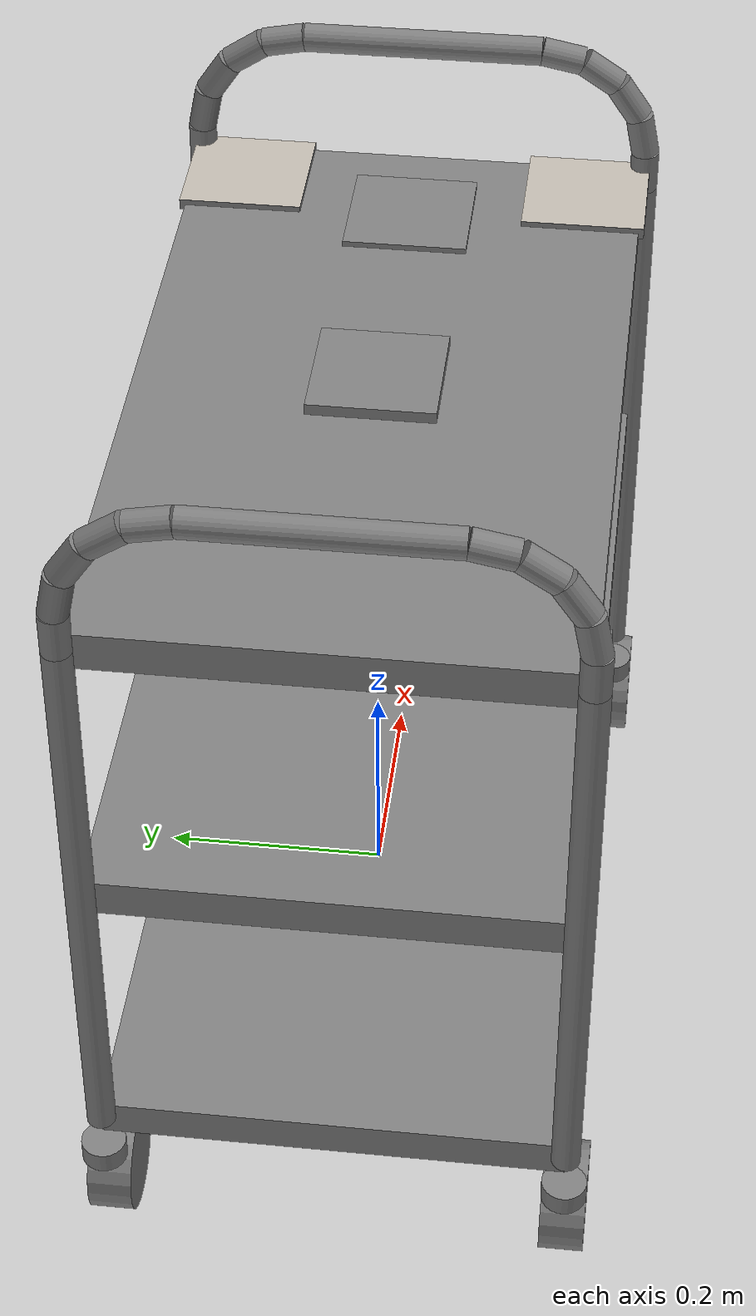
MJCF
<?xml version='1.0' encoding='utf-8'?>
<mujoco model="cart_example">
  <compiler angle="radian" />
  <asset>
    <mesh name="front_left_aruco_mesh" file="../cart/aruco/front_left_aruco_marker.obj" />
    <texture name="front_left_aruco_texture" type="2d" file="aruco/front_left_aruco_4x4_50_id1_rot90.png" />
    <material name="front_left_aruco_mat" texture="front_left_aruco_texture" texrepeat="1 1" texuniform="false" />
    <mesh name="front_middle_aruco_mesh" file="../cart/aruco/front_middle_aruco_marker.obj" />
    <texture name="front_middle_aruco_texture" type="2d" file="aruco/front_middle_aruco_4x4_50_id2_rot90.png" />
    <material name="front_middle_aruco_mat" texture="front_middle_aruco_texture" texrepeat="1 1" texuniform="false" />
    <mesh name="front_right_aruco_mesh" file="../cart/aruco/front_right_aruco_marker.obj" />
    <texture name="front_right_aruco_texture" type="2d" file="aruco/front_right_aruco_4x4_50_id3_rot90.png" />
    <material name="front_right_aruco_mat" texture="front_right_aruco_texture" texrepeat="1 1" texuniform="false" />
    <mesh name="middle_aruco_mesh" file="../cart/aruco/middle_aruco_marker.obj" />
    <texture name="middle_aruco_texture" type="2d" file="aruco/middle_aruco_4x4_50_id0_rot90.png" />
    <material name="middle_aruco_mat" texture="middle_aruco_texture" texrepeat="1 1" texuniform="false" />
  </asset>
  <worldbody>
    <body name="bottom_plate">
      <inertial pos="0.138333 -0.0189417 0.250919" quat="0.362053 0.585409 0.638874 0.343591" mass="6" diaginertia="1.23216 1.05113 0.572514" />
      <joint name="cart_freejoint" type="free" />
      <site name="left_hand_target" pos="-0.35 0.075 0.685" size="0.012" group="4" rgba="0 1 0 1" />
      <site name="right_hand_target" pos="-0.35 -0.075 0.685" size="0.012" group="4" rgba="0 1 0 1" />
      <geom size="0.35 0.205 0.017" type="box" />
      <geom size="0.0127 0.1075" pos="-0.35 0 0.685" quat="0.707107 0.707107 0 0" type="cylinder" />
      <geom size="0.0127 0.0190215" pos="-0.35 0.201289 0.606156" quat="0.995185 0.0980174 0 0" type="cylinder" />
      <geom size="0.0127 0.0190215" pos="-0.35 0.187011 0.640627" quat="0.95694 0.290285 0 0" type="cylinder" />
      <geom size="0.0127 0.0190215" pos="-0.35 0.160627 0.667011" quat="0.881921 0.471397 0 0" type="cylinder" />
      <geom size="0.0127 0.0190215" pos="-0.35 0.126156 0.681289" quat="0.77301 0.634393 0 0" type="cylinder" />
      <geom size="0.0127 0.275" pos="-0.35 0.205 0.275" type="cylinder" />
      <geom size="0.0127 0.01875" pos="-0.35 0.205 0.56875" type="cylinder" />
      <geom size="0.0127 0.0190215" pos="-0.35 -0.201289 0.606156" quat="0.995185 -0.0980174 0 0" type="cylinder" />
      <geom size="0.0127 0.0190215" pos="-0.35 -0.187011 0.640627" quat="0.95694 -0.290285 0 0" type="cylinder" />
      <geom size="0.0127 0.0190215" pos="-0.35 -0.160627 0.667011" quat="0.881921 -0.471397 0 0" type="cylinder" />
      <geom size="0.0127 0.0190215" pos="-0.35 -0.126156 0.681289" quat="0.77301 -0.634393 0 0" type="cylinder" />
      <geom size="0.0127 0.275" pos="-0.35 -0.205 0.275" type="cylinder" />
      <geom size="0.0127 0.01875" pos="-0.35 -0.205 0.56875" type="cylinder" />
      <geom size="0.0127 0.1075" pos="0.35 0 0.685" quat="0.707107 0.707107 0 0" type="cylinder" />
      <geom size="0.0127 0.0190215" pos="0.35 0.201289 0.606156" quat="0.995185 0.0980174 0 0" type="cylinder" />
      <geom size="0.0127 0.0190215" pos="0.35 0.187011 0.640627" quat="0.95694 0.290285 0 0" type="cylinder" />
      <geom size="0.0127 0.0190215" pos="0.35 0.160627 0.667011" quat="0.881921 0.471397 0 0" type="cylinder" />
      <geom size="0.0127 0.0190215" pos="0.35 0.126156 0.681289" quat="0.77301 0.634393 0 0" type="cylinder" />
      <geom size="0.0127 0.275" pos="0.35 0.205 0.275" type="cylinder" />
      <geom name="front_left_aruco_backing" size="0.055 0.055 0.005" pos="0.3 0.155 0.567" type="box" />
      <geom name="front_left_aruco_geom" pos="0.3 0.155 0.567" type="mesh" contype="0" material="front_left_aruco_mat" mesh="front_left_aruco_mesh" />
      <geom name="front_middle_aruco_backing" size="0.055 0.055 0.005" pos="0.25 0 0.567" type="box" />
      <geom size="0.0127 0.01875" pos="0.35 0.205 0.56875" type="cylinder" />
      <geom size="0.0127 0.0190215" pos="0.35 -0.201289 0.606156" quat="0.995185 -0.0980174 0 0" type="cylinder" />
      <geom size="0.0127 0.0190215" pos="0.35 -0.187011 0.640627" quat="0.95694 -0.290285 0 0" type="cylinder" />
      <geom size="0.0127 0.0190215" pos="0.35 -0.160627 0.667011" quat="0.881921 -0.471397 0 0" type="cylinder" />
      <geom size="0.0127 0.0190215" pos="0.35 -0.126156 0.681289" quat="0.77301 -0.634393 0 0" type="cylinder" />
      <geom size="0.0127 0.275" pos="0.35 -0.205 0.275" type="cylinder" />
      <geom name="front_right_aruco_backing" size="0.055 0.055 0.005" pos="0.3 -0.155 0.567" type="box" />
      <geom name="front_right_aruco_geom" pos="0.3 -0.155 0.567" type="mesh" contype="0" material="front_right_aruco_mat" mesh="front_right_aruco_mesh" />
      <geom size="0.0127 0.01875" pos="0.35 -0.205 0.56875" type="cylinder" />
      <geom size="0.35 0.205 0.017" pos="0 0 0.28" type="box" />
      <geom size="0.35 0.205 0.017" pos="0 0 0.55" type="box" />
      <geom name="middle_aruco_backing" size="0.055 0.055 0.005" pos="0 0 0.572" type="box" />
      <body name="back_left_wheel_caster" pos="-0.35 0.205 -0.04">
        <inertial pos="0 0 0" quat="0.5 0.5 -0.5 0.5" mass="0.1" diaginertia="2e-05 1.3e-05 1.3e-05" />

        <joint name="back_left_wheel_joint_0" pos="0 0 0" axis="0 0 1" actuatorfrcrange="-10 10" damping="0.02" frictionloss="0.01" />
        <geom size="0.02 0.01" type="cylinder" />
        <body name="back_left_wheel_wheel" pos="0.05 0 -0.07">
          <inertial pos="0 0 0" quat="0.5 0.5 -0.5 0.5" mass="0.2" diaginertia="0.00025 0.000152 0.000152" />
          <joint name="back_left_wheel_joint_1" pos="0 0 0" axis="0 1 0" limited="false" actuatorfrcrange="-10 10" damping="0.001" frictionloss="0.01" />
          <geom size="0.05 0.02" quat="0.707107 0.707107 0 0" type="cylinder" condim="6" friction="0.5 0.005 0.0005" />
        </body>
      </body>
      <body name="back_right_wheel_caster" pos="-0.35 -0.205 -0.04">
        <inertial pos="0 0 0" quat="0.5 0.5 -0.5 0.5" mass="0.1" diaginertia="2e-05 1.3e-05 1.3e-05" />
        <joint name="back_right_wheel_joint_0" pos="0 0 0" axis="0 0 1" actuatorfrcrange="-10 10" damping="0.02" frictionloss="0.01" />
        <geom size="0.02 0.01" type="cylinder" />
        <body name="back_right_wheel_wheel" pos="0.05 0 -0.07">
          <inertial pos="0 0 0" quat="0.5 0.5 -0.5 0.5" mass="0.2" diaginertia="0.00025 0.000152 0.000152" />
          <joint name="back_right_wheel_joint_1" pos="0 0 0" axis="0 1 0" limited="false" actuatorfrcrange="-10 10" damping="0.001" frictionloss="0.01" />
          <geom size="0.05 0.02" quat="0.707107 0.707107 0 0" type="cylinder" condim="6" friction="0.5 0.005 0.0005" />
        </body>
      </body>
      <body name="front_left_wheel_caster" pos="0.35 0.205 -0.04">
        <inertial pos="0 0 0" quat="0.5 0.5 -0.5 0.5" mass="0.1" diaginertia="2e-05 1.3e-05 1.3e-05" />
        <joint name="front_left_wheel_joint_0" pos="0 0 0" axis="0 0 1" actuatorfrcrange="-10 10" damping="0.02" frictionloss="0.01" />
        <geom size="0.02 0.01" type="cylinder" />
        <body name="front_left_wheel_wheel" pos="0.05 0 -0.07">
          <inertial pos="0 0 0" quat="0.5 0.5 -0.5 0.5" mass="0.2" diaginertia="0.00025 0.000152 0.000152" />
          <joint name="front_left_wheel_joint_1" pos="0 0 0" axis="0 1 0" limited="false" actuatorfrcrange="-10 10" damping="0.001" frictionloss="0.01" />
          <geom size="0.05 0.02" quat="0.707107 0.707107 0 0" type="cylinder" condim="6" friction="0.5 0.005 0.0005" />
        </body>
      </body>
      <body name="front_right_wheel_caster" pos="0.35 -0.205 -0.04">
        <inertial pos="0 0 0" quat="0.5 0.5 -0.5 0.5" mass="0.1" diaginertia="2e-05 1.3e-05 1.3e-05" />
        <joint name="front_right_wheel_joint_0" pos="0 0 0" axis="0 0 1" actuatorfrcrange="-10 10" damping="0.02" frictionloss="0.01" />
        <geom size="0.02 0.01" type="cylinder" />
        <body name="front_right_wheel_wheel" pos="0.05 0 -0.07">
          <inertial pos="0 0 0" quat="0.5 0.5 -0.5 0.5" mass="0.2" diaginertia="0.00025 0.000152 0.000152" />
          <joint name="front_right_wheel_joint_1" pos="0 0 0" axis="0 1 0" limited="false" actuatorfrcrange="-10 10" damping="0.001" frictionloss="0.01" />
          <geom size="0.05 0.02" quat="0.707107 0.707107 0 0" type="cylinder" condim="6" friction="0.5 0.005 0.0005" />
        </body>
      </body>
    </body>
  </worldbody>
</mujoco>
